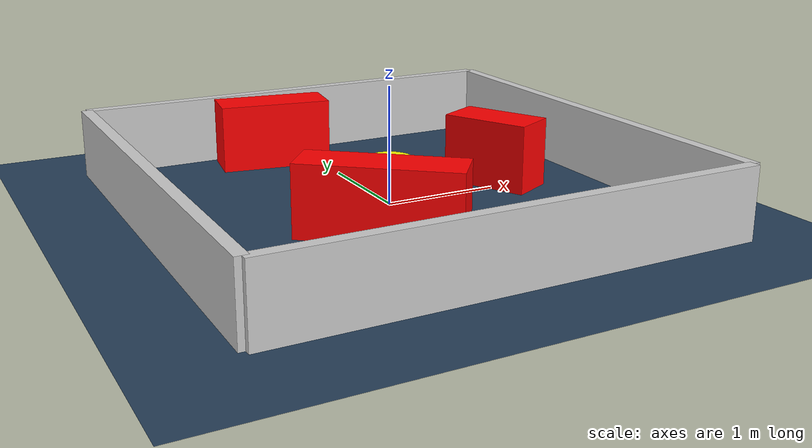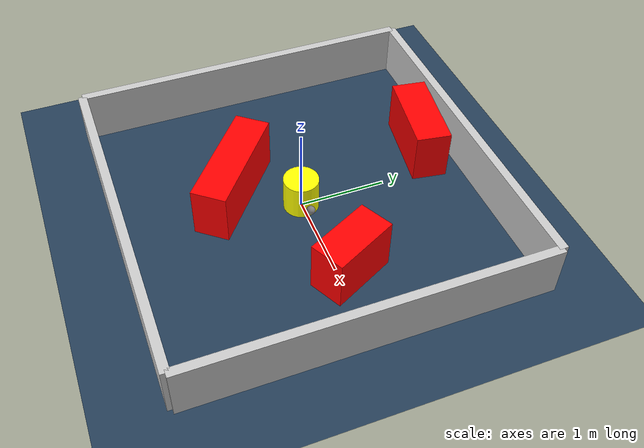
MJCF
<?xml version="1.0" ?>
<mujoco model="generated_environment">
  <option timestep="0.01" integrator="RK4" cone="elliptic"/>
  <default>
    <geom density="1"/>
  </default>
  <asset>
    <texture builtin="gradient" height="3072" rgb1="0.3 0.5 0.7" rgb2="0 0 0" type="skybox" width="512"/>
    <texture builtin="checker" height="300" mark="edge" markrgb="0.8 0.8 0.8" name="groundplane" rgb1="0.2 0.3 0.4" rgb2="0.1 0.2 0.3" type="2d" width="300"/>
    <material name="groundplane" reflectance="0.2" texrepeat="5 5" texture="groundplane" texuniform="true"/>
    <material name="robot" rgba="0.0 1.0 0.0 1"/>
  </asset>
  <worldbody>
    <light dir="0 0 -1" directional="true" pos="0 0 1.5"/>
    <geom condim="4" friction="1.0 0.005 0.001" material="groundplane" name="floor" size="0 0 0.05" type="plane"/>
    <body name="walls">
      <geom name="wall_1" condim="4" pos="-2.0 0.0 0.3" rgba="0.800000011920929 0.800000011920929 0.800000011920929 1.0" size="0.05 2.0 0.3" type="box"/>
      <geom name="wall_2" condim="4" pos="2.0 0.0 0.3" rgba="0.800000011920929 0.800000011920929 0.800000011920929 1.0" size="0.05 2.0 0.3" type="box"/>
      <geom name="wall_3" condim="4" pos="0.0 -2.0 0.3" rgba="0.800000011920929 0.800000011920929 0.800000011920929 1.0" size="2.0 0.05 0.3" type="box"/>
      <geom name="wall_4" condim="4" pos="0.0 2.0 0.3" rgba="0.800000011920929 0.800000011920929 0.800000011920929 1.0" size="2.0 0.05 0.3" type="box"/>
    </body>
    <body name="robot">
      <joint name="joint_x" type="slide" pos="0 0 0" axis="1 0 0"/>
      <joint name="joint_y" type="slide" pos="0 0 0" axis="0 1 0"/>
      <geom name="robot" type="sphere" pos="0.3 0.0 0.2" size="0.05" mass="5." friction="1.0 0.005 0.0001" condim="4" rgba="0.5 0.5 0.5 1.0"/>
      <site name="sensor_ball"/>
    </body>
    <body name="obstacle_movable_1">
      <geom name="obstacle_movable_1" condim="4" pos="0.0 0.0 0.2" euler="0 0 0.0" friction="1.0 0.005 0.001" rgba="1.0 1.0 0.0 1.0" size="0.2 0.2 0.0" type="cylinder" mass="0.1"/>
      <joint type="free"/>
    </body>
    <body name="obstacle_2_static">
      <geom name="obstacle_2_static" condim="4" pos="-0.3861420574469323 1.6285747222690994 0.3" euler="0 0 351.24246604596976" friction="1.0 0.005 0.001" rgba="1 0 0 1" size="0.49717277282311007 0.2 0.3" type="box"/>
    </body>
    <body name="obstacle_3_static">
      <geom name="obstacle_3_static" condim="4" pos="1.1133592220055484 0.12413478844982406 0.3" euler="0 0 296.7299046906061" friction="1.0 0.005 0.001" rgba="1 0 0 1" size="0.38852209046474795 0.2 0.3" type="box"/>
    </body>
    <body name="obstacle_4_static">
      <geom name="obstacle_4_static" condim="4" pos="-0.4090340391412177 -0.6618696904014763 0.3" euler="0 0 140.99056439601276" friction="1.0 0.005 0.001" rgba="1 0 0 1" size="0.6558207388745483 0.2 0.3" type="box"/>
    </body>
  </worldbody>
  <actuator>
    <motor name="actuator_x" joint="joint_x" gear="1" ctrlrange="-1 1"/>
    <motor name="actuator_y" joint="joint_y" gear="1" ctrlrange="-1 1"/>
  </actuator>
</mujoco>
